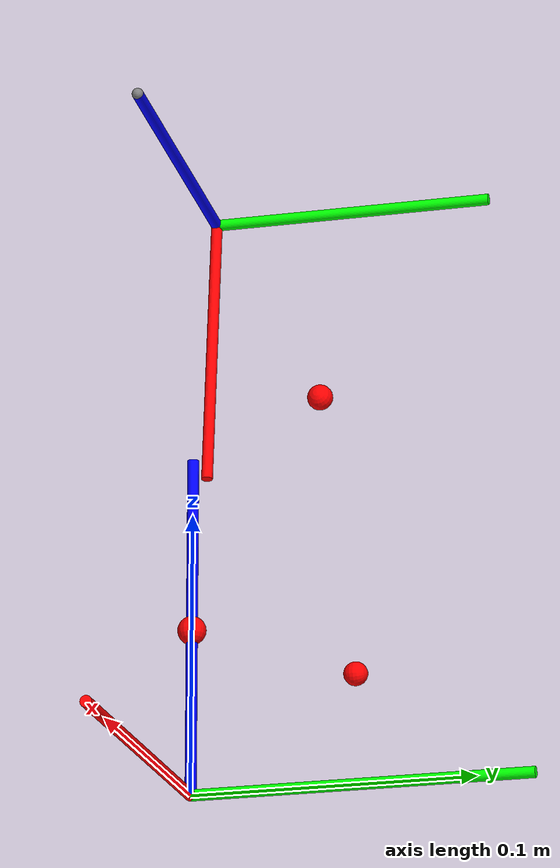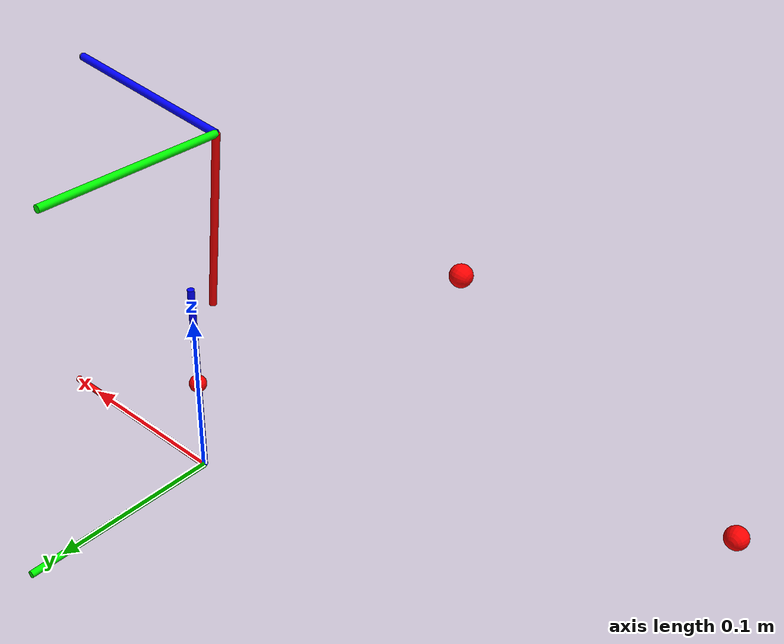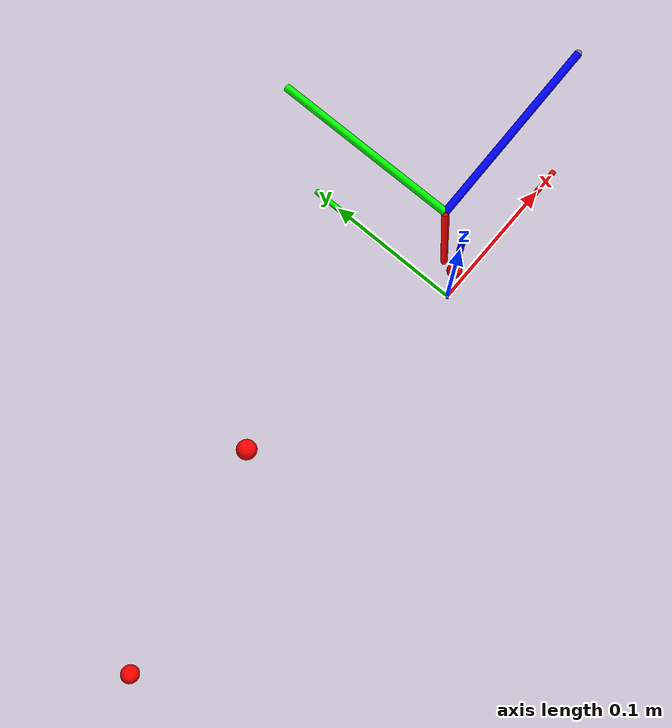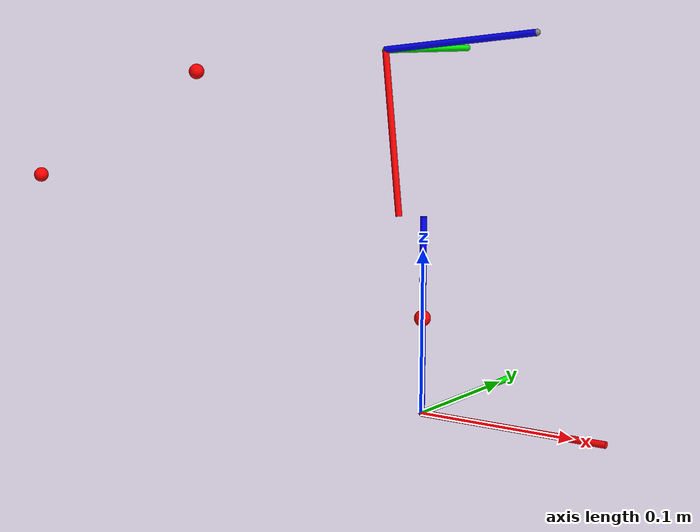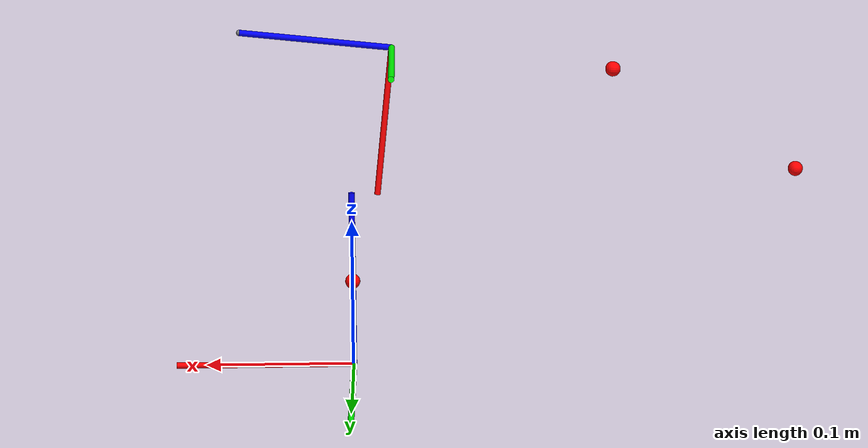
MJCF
<mujoco model="dm6dof">
  <compiler angle="radian" />

  <default>
    <default class="dm6dof">
      <default class="visual">
        <geom type="mesh" contype="0" conaffinity="0" group="2" />
      </default>
      <default class="collision">
        <geom group="3" />
        <default class="finger_collision">
          <geom type="box" solimp="0 1 0.001 0.02 3" solref="0.001 1" friction="2 0.05 0.05" />
        </default>
      </default>
    </default>
    <default class="dm8009">
      <geom contype="0" conaffinity="0"/>
      <joint damping="0.60" frictionloss="0.052" armature="0.028"/>
      <position kp="50" dampratio="1"/>
    </default>
    <default class="dm4340">
      <geom contype="0" conaffinity="0"/>
      <joint damping="0.60" frictionloss="0.052" armature="0.028"/>
      <position kp="50" dampratio="1"/>
    </default>
    <default class="dm4310">
      <geom contype="0" conaffinity="0"/>
      <joint damping="0.60" frictionloss="0.052" armature="0.028"/>
      <position kp="50" dampratio="1"/>
    </default>
  </default>

  <worldbody>
    <body name="base" pos="0 0 0" childclass="dm6dof">
      <geom type="cylinder" size="0.002 0.06" rgba="1 0 0 1" pos="0.06 0.0 0.0" euler="0 1.57079 0" class="visual" />
      <geom type="cylinder" size="0.002 0.06" rgba="0 1 0 1" pos="0.0 0.06 0.0" euler="1.57079 0 0" class="visual" />
      <geom type="cylinder" size="0.002 0.06" rgba="0 0 1 1" pos="0.0 0.0 0.06" euler="0 0 0" class="visual" />

      <inertial pos="0.0030905 -0.00024462 0.029293" mass="1.3011" fullinertia="0.002694 0.002574 0.002166 0 0 0" />

      <body name="link1" pos="0 0 0.0585">
        <site name="link1_Site" pos="0.0 0 0.0" rgba="1 0 0 1" />
        <inertial pos="5.6073e-05 -0.00079028 0.063084" quat="0.707118 0.000148927 -0.000137117 0.707095" mass="1.1181" diaginertia="0.005976 0.005669 0.000850999"/>
        <joint name="joint1" pos="0 0 0" axis="0 0 1" type="hinge" range="-2.79253 2.79253" class="dm8009"/>

        <body name="link2" pos="0 0 0.071" quat="0.707105 0.707108 0 0">
          <inertial pos="-0.19603 -2.3087e-05 0.00068956" quat="0.500232 0.499772 0.500177 0.499819" mass="1.1392" diaginertia="0.05725 0.057057 0.000895999"/>
          <joint name="joint2" pos="0 0 0" axis="0 0 1" type="hinge" range="-3.14159 0" class="dm8009"/>

          <body name="link3" pos="-0.3 0 0" quat="0.99863 0 0 0.0523361">
            <site name="link3_Site" pos="0.0 0. 0.0182778" rgba="1 0 0 1" />
            <inertial pos="0.068822 0.050855 0.00044972" quat="-0.0204837 0.706732 0.0203332 0.706892" mass="0.63716" diaginertia="0.006139 0.00442624 0.00225276"/>
            <joint name="joint3" pos="0 0 0" axis="0 0 1" type="hinge" range="0 3.14159" class="dm4340"/>
            <body name="link4" pos="0.11502 0.06 0" quat="0.499998 -0.5 0.500002 -0.5">
              <site name="link4_Site" pos="0.0 0 0.0182778" rgba="1 0 0 1" />
              <inertial pos="4.6861e-05 -0.0033784 0.14947" quat="0.704411 0.00211362 -0.00213176 0.709786" mass="0.49378" diaginertia="0.0128445 0.012827 0.000210545"/>
              <joint name="joint4" pos="0 0 0" axis="0 0 1" type="hinge" range="-2.79253 2.79253" class="dm4310" />

              <body name="link5" pos="0 0 0.18398" quat="0.499998 0.5 -0.5 0.500002">
                <inertial pos="0.054832 6.3774e-05 0.0042051" quat="0.497447 0.502596 0.501552 0.498387" mass="0.37865" diaginertia="0.00145 0.00140908 0.000184915"/>
                <joint name="joint5" pos="0 0 0" axis="0 0 1" type="hinge" range="-1.5708 1.5708" class="dm4310" />

                <body name="link6" pos="0.081038 0 0" quat="0.499998 -0.5 0.500002 -0.5">
                  <site name="EE" size="0.002" pos="0.0 0.0 0.0" />
                  <inertial pos="0.00010011 -0.0002483 0.0073789" quat="0.653301 0.653257 -0.268288 -0.2729" mass="0.0077993" diaginertia="1.02651e-06 9.99999e-07 9.73492e-07"/>
                  <joint name="joint6" pos="0 0 0" axis="0 0 1" type="hinge" range="-2.79253 2.79253" class="dm4310" />
                  <geom type="cylinder" size="0.002 0.05" rgba="1 0 0 1" pos="0.05 -0.0 -0.1" euler="0 1.57079 0" class="visual" />
                  <geom type="cylinder" size="0.002 0.05" rgba="0 1 0 1" pos="0 0.05 -0.1" euler="1.57079 0 0" class="visual" />
                  <geom type="cylinder" size="0.002 0.05" rgba="0 0 1 1" pos="0 -0.0 -0.05" euler="0 0 0" class="visual" />

                </body>
              </body>
            </body>
          </body>
        </body>
      </body>
    </body>
  </worldbody>

  <actuator>
    <position name="joint1" joint="joint1" class="dm8009" kp="2000" kv="150" forcerange="-40 40" ctrlrange="-2.79253 2.79253" />
    <position name="joint2" joint="joint2" class="dm8009" kp="2000" kv="150" forcerange="-40 40" ctrlrange="-3.14159 0" />
    <position name="joint3" joint="joint3" class="dm4340" kp="1600" kv="150" forcerange="-27 27" ctrlrange="0 3.14159" />
    <position name="joint4" joint="joint4" class="dm4310" kp="200" kv="20" forcerange="-7 7" ctrlrange="-2.79253 2.79253" />
    <position name="joint5" joint="joint5" class="dm4310" kp="50" kv="1.5" forcerange="-7 7" ctrlrange="-1.5708 1.5708" />
    <position name="joint6" joint="joint6" class="dm4310" kp="50" kv="1.5" forcerange="-7 7" ctrlrange="-2.79253 2.79253" />
  </actuator>

  <keyframe>
    <key name="home" qpos="0 0 0 0 0 0" ctrl="0 0 0 0 0 0" />
    <key name="stand" qpos="0 -0.5 0.5 0 0 0" ctrl="0 -0.5 0.5 0 0 0" />
    <key name="rest" qpos="0 0 0 0 0 0" ctrl="0 0 0 0 0 0" />
  </keyframe>

</mujoco>
